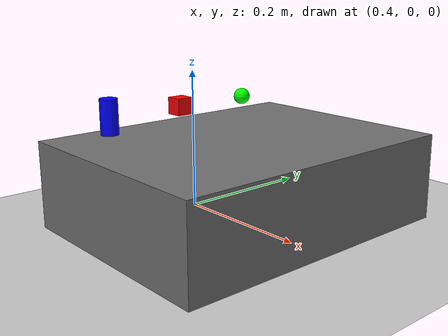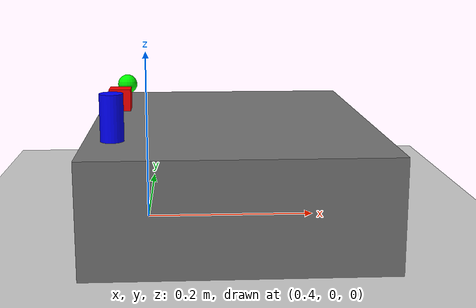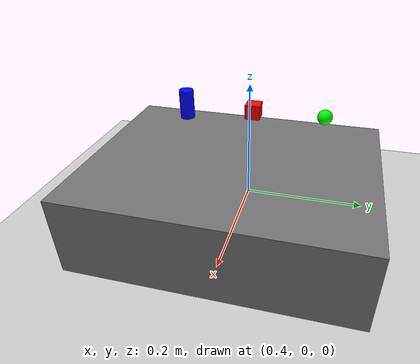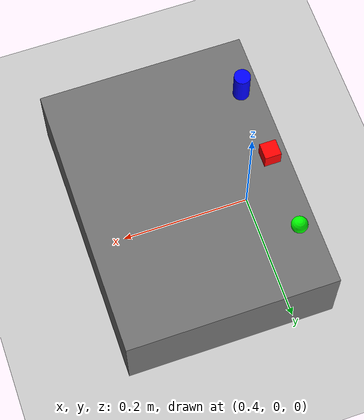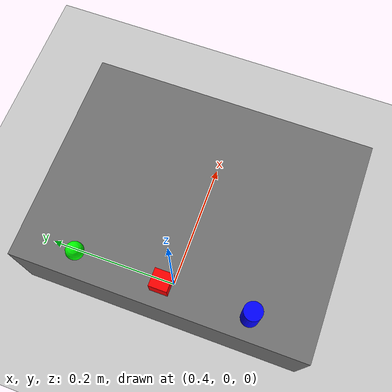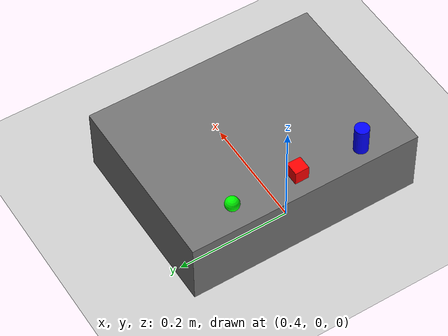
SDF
<?xml version="1.0" ?>
<sdf version="1.6">
    <world name="gimbal_world">
        <light type="directional" name="sun">
            <cast_shadows>true</cast_shadows>
            <pose>0 0 10 0 0 0</pose>
            <diffuse>0.8 0.8 0.8 1</diffuse>
            <specular>0.2 0.2 0.2 1</specular>
            <attenuation>
                <range>1000</range>
                <constant>0.9</constant>
                <linear>0.01</linear>
                <quadratic>0.001</quadratic>
            </attenuation>
            <direction>-0.5 0.1 -0.9</direction>
        </light>

        <model name="ground_plane">
            <static>true</static>
            <link name="link">
                <collision name="collision">
                    <geometry>
                        <plane>
                            <normal>0 0 1</normal>
                            <size>100 100</size>
                        </plane>
                    </geometry>
                </collision>
                <visual name="visual">
                    <geometry>
                        <plane>
                            <normal>0 0 1</normal>
                            <size>100 100</size>
                        </plane>
                    </geometry>
                    <material>
                        <ambient>0.8 0.8 0.8 1</ambient>
                        <diffuse>0.8 0.8 0.8 1</diffuse>
                        <specular>0.8 0.8 0.8 1</specular>
                    </material>
                </visual>
            </link>
        </model>

        <model name="support_platform">
            <pose>0.50 0 0.06 0 0 0</pose>
            <static>true</static>
            <link name="link">
                <collision name="collision">
                    <geometry>
                        <box>
                            <size>0.32 0.42 0.12</size>
                        </box>
                    </geometry>
                </collision>
                <visual name="visual">
                    <geometry>
                        <box>
                            <size>0.32 0.42 0.12</size>
                        </box>
                    </geometry>
                    <material>
                        <ambient>0.45 0.45 0.45 1</ambient>
                        <diffuse>0.45 0.45 0.45 1</diffuse>
                    </material>
                </visual>
            </link>
        </model>

        <model name="red_box">
            <pose>0.37 0.00 0.145 0 0 0</pose>
            <static>false</static>
            <link name="link">
                <inertial>
                    <mass>0.020</mass>
                    <inertia>
                        <ixx>2.083333e-6</ixx>
                        <iyy>2.083333e-6</iyy>
                        <izz>2.083333e-6</izz>
                    </inertia>
                </inertial>
                <collision name="collision">
                    <geometry>
                        <box>
                            <size>0.025 0.025 0.025</size>
                        </box>
                    </geometry>
                    <surface>
                        <friction>
                            <ode>
                                <mu>1.0</mu>
                                <mu2>1.0</mu2>
                            </ode>
                        </friction>
                    </surface>
                </collision>
                <visual name="visual">
                    <geometry>
                        <box>
                            <size>0.025 0.025 0.025</size>
                        </box>
                    </geometry>
                    <material>
                        <ambient>1 0 0 1</ambient>
                        <diffuse>1 0 0 1</diffuse>
                        <specular>0.5 0.5 0.5 1</specular>
                    </material>
                </visual>
            </link>
        </model>

        <model name="blue_cylinder">
            <pose>0.37 -0.12 0.145 0 0 0</pose>
            <static>false</static>
            <link name="link">
                <inertial>
                    <mass>0.025</mass>
                    <inertia>
                        <ixx>6.184896e-6</ixx>
                        <iyy>6.184896e-6</iyy>
                        <izz>1.953125e-6</izz>
                    </inertia>
                </inertial>
                <collision name="collision">
                    <geometry>
                        <cylinder>
                            <radius>0.0125</radius>
                            <length>0.05</length>
                        </cylinder>
                    </geometry>
                    <surface>
                        <friction>
                            <ode>
                                <mu>1.0</mu>
                                <mu2>1.0</mu2>
                            </ode>
                        </friction>
                    </surface>
                </collision>
                <visual name="visual">
                    <geometry>
                        <cylinder>
                            <radius>0.0125</radius>
                            <length>0.05</length>
                        </cylinder>
                    </geometry>
                    <material>
                        <ambient>0 0 1 1</ambient>
                        <diffuse>0 0 1 1</diffuse>
                        <specular>0.5 0.5 0.5 1</specular>
                    </material>
                </visual>
            </link>
        </model>
        <model name="green_sphere">
            <pose>0.37 0.12 0.145 0 0 0</pose>
            <static>false</static>
            <link name="link">
                <inertial>
                    <mass>0.015</mass>
                    <inertia>
                        <ixx>9.375000e-7</ixx>
                        <iyy>9.375000e-7</iyy>
                        <izz>9.375000e-7</izz>
                    </inertia>
                </inertial>
                <collision name="collision">
                    <geometry>
                        <sphere>
                            <radius>0.0125</radius>
                        </sphere>
                    </geometry>
                    <surface>
                        <friction>
                            <ode>
                                <mu>1.0</mu>
                                <mu2>1.0</mu2>
                            </ode>
                        </friction>
                    </surface>
                </collision>
                <visual name="visual">
                    <geometry>
                        <sphere>
                            <radius>0.0125</radius>
                        </sphere>
                    </geometry>
                    <material>
                        <ambient>0 1 0 1</ambient>
                        <diffuse>0 1 0 1</diffuse>
                        <specular>0.5 0.5 0.5 1</specular>
                    </material>
                </visual>
            </link>
        </model>
    </world>
</sdf>
